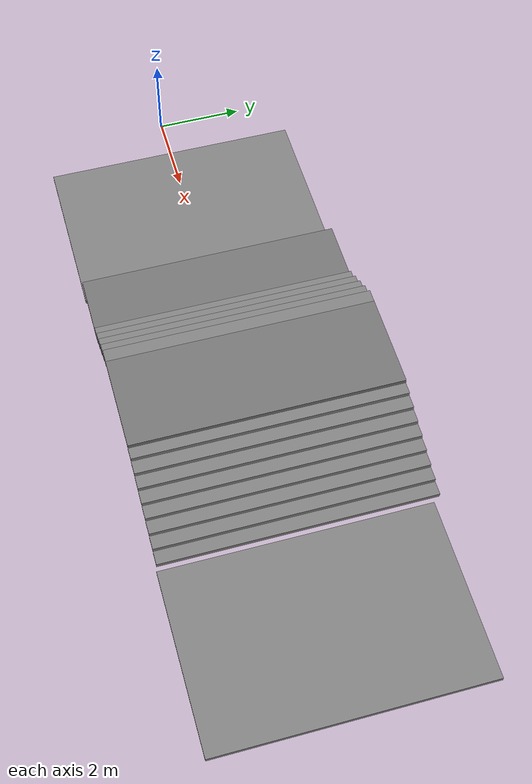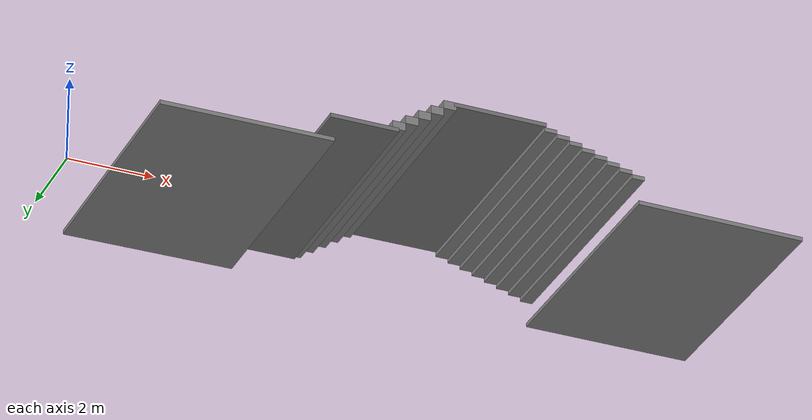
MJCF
<?xml version="1.0" encoding="UTF-8" ?>
<mujoco model="ramp_terrain">

    <option gravity="0 0 -9.81" />

    <worldbody>
        <!-- ramp -->
        <body name="ramp" pos="3.0 0 0.0">

            <geom
                name="ramp_geom"
                type="box"
                size="2.0 3.0 0.05"
                euler="0 -0.3 0"
                friction="1.0 0.005 0.0001"
                rgba="0.5 0.5 0.5 1"/>

        </body>
        <body name="platform" pos="5.7 0 0.6">
            <geom
                name="platform_geom"
                type="box"
                size="0.8 3.0 0.05"
                friction="1.0 0.005 0.0001"
                rgba="0.45 0.45 0.45 1"/>
        </body>
         <!-- upstairs -->
        <body name="up_stairs" pos="6.2 0 0">
            <geom name="up_stair1" type="box" pos="0.3 0 0.71" size="0.15 3.0 0.10" friction="1.0 0.005 0.0001" rgba="0.5 0.5 0.5 1"/>
            <geom name="up_stair2" type="box" pos="0.6 0 0.91" size="0.15 3.0 0.10" friction="1.0 0.005 0.0001" rgba="0.5 0.5 0.5 1"/>
            <geom name="up_stair3" type="box" pos="0.9 0 1.11" size="0.15 3.0 0.10" friction="1.0 0.005 0.0001" rgba="0.5 0.5 0.5 1"/>
            <geom name="up_stair4" type="box" pos="1.2 0 1.31" size="0.15 3.0 0.10" friction="1.0 0.005 0.0001" rgba="0.5 0.5 0.5 1"/>
            <geom name="up_stair5" type="box" pos="1.5 0 1.51" size="0.15 3.0 0.10" friction="1.0 0.005 0.0001" rgba="0.5 0.5 0.5 1"/>
        </body>

        <!-- top platform -->
        <body name="top_platform" pos="8.9 0 1.56"> # 1.2
            <geom
                name="top_platform_geom"
                type="box"
                size="1.1 3.0 0.05"
                friction="1.0 0.005 0.0001"
                rgba="0.45 0.45 0.45 1"/>
        </body>

        <!-- downstairs -->
        <body name="down_stairs" pos="9.8 0 0">
            # 适配上坡的台阶高度，增加台阶数量
            <geom name="down_stair1" type="box" pos="0.3 0 1.44" size="0.15 3.0 0.05" friction="1.0 0.005 0.0001" rgba="0.5 0.5 0.5 1"/>
            <geom name="down_stair2" type="box" pos="0.6 0 1.34" size="0.15 3.0 0.05" friction="1.0 0.005 0.0001" rgba="0.5 0.5 0.5 1"/>
            <geom name="down_stair3" type="box" pos="0.9 0 1.24" size="0.15 3.0 0.05" friction="1.0 0.005 0.0001" rgba="0.5 0.5 0.5 1"/>
            <geom name="down_stair4" type="box" pos="1.2 0 1.14" size="0.15 3.0 0.05" friction="1.0 0.005 0.0001" rgba="0.5 0.5 0.5 1"/>
            <geom name="down_stair5" type="box" pos="1.5 0 1.04" size="0.15 3.0 0.05" friction="1.0 0.005 0.0001" rgba="0.5 0.5 0.5 1"/>
            <geom name="down_stair6" type="box" pos="1.8 0 0.94" size="0.15 3.0 0.05" friction="1.0 0.005 0.0001" rgba="0.5 0.5 0.5 1"/>
            <geom name="down_stair7" type="box" pos="2.1 0 0.84" size="0.15 3.0 0.05" friction="1.0 0.005 0.0001" rgba="0.5 0.5 0.5 1"/>
            <geom name="down_stair8" type="box" pos="2.4 0 0.74" size="0.15 3.0 0.05" friction="1.0 0.005 0.0001" rgba="0.5 0.5 0.5 1"/>
        </body>
                <body name="ramp2" pos="14.2 0 0.1">

            <geom
                name="ramp2_geom"
                type="box"
                size="2.0 3.0 0.05"
                euler="0 0.3 0"
                friction="1.0 0.005 0.0001"
                rgba="0.5 0.5 0.5 1"/>

        </body>
    </worldbody>

</mujoco>
